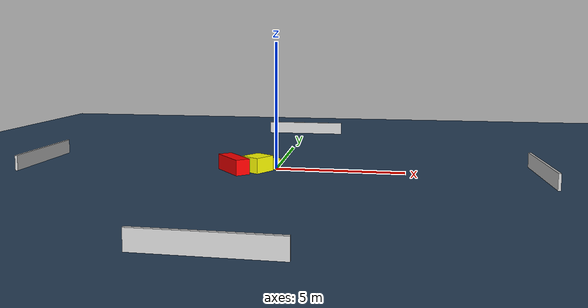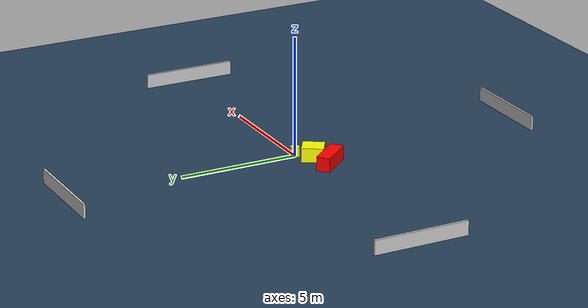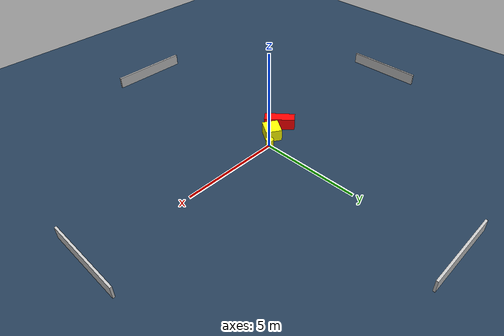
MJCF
<?xml version="1.0" ?>
<mujoco model="generated_environment">
  <option timestep="0.01" integrator="RK4" cone="elliptic"/>
  <default>
    <geom density="1"/>
  </default>
  <asset>
    <texture builtin="gradient" height="3072" name="skybox" rgb1="0.3 0.5 0.7" rgb2="0 0 0" type="skybox" width="512"/>
    <texture builtin="checker" height="300" name="groundplane" rgb1="0.2 0.3 0.4" rgb2="0.1 0.2 0.3" type="2d" width="300"/>
    <material name="groundplane" reflectance="0.2" texrepeat="5 5" texture="groundplane"/>
  </asset>
  <worldbody>
    <light dir="0 0 -1" directional="true" pos="0 0 1.5"/>
    <geom condim="3" friction="0.5 0.005 0.001" material="groundplane" name="floor" pos="0 0 0" size="0 0 0.05" type="plane"/>
    <body name="walls">
      <geom name="wall_1" condim="4" pos="-10.0 0.0 0.3" rgba="0.800000011920929 0.800000011920929 0.800000011920929 1.0" size="0.05 2.0 0.3" type="box"/>
      <geom name="wall_2" condim="4" pos="10.0 0.0 0.3" rgba="0.800000011920929 0.800000011920929 0.800000011920929 1.0" size="0.05 2.0 0.3" type="box"/>
      <geom name="wall_3" condim="4" pos="0.0 -10.0 0.3" rgba="0.800000011920929 0.800000011920929 0.800000011920929 1.0" size="2.0 0.05 0.3" type="box"/>
      <geom name="wall_4" condim="4" pos="0.0 10.0 0.3" rgba="0.800000011920929 0.800000011920929 0.800000011920929 1.0" size="2.0 0.05 0.3" type="box"/>
    </body>
    <body name="robot">
      <joint name="joint_x" type="slide" pos="0 0 0" axis="1 0 0"/>
      <joint name="joint_y" type="slide" pos="0 0 0" axis="0 1 0"/>
      <geom name="robot" type="cylinder" pos="0.0 0.0 0.2" size="0.2 0.2 0.0" mass="5.0" friction="1.0 0.005 0.0001" condim="4" rgba="1.0 1.0 0.0 1.0"/>
    </body>
    <body name="obstacle_1_movable">
      <geom name="obstacle_1_movable" condim="4" pos="-0.6573714443278771 -0.4749045000269899 0.3" euler="0 0 327.55892654318285" friction="0.0 0.005 0.001" rgba="1.0 1.0 0.0 1.0" size="0.40512941000168023 0.45370274607600547 0.3" type="box" mass="0.1"/>
      <joint type="free"/>
    </body>
    <body name="obstacle_2_static">
      <geom name="obstacle_2_static" condim="4" pos="-1.547020500989707 -0.7666061261821906 0.3" euler="0 0 40.024280020949526" friction="0.0 0.005 0.001" rgba="1.0 0.0 0.0 1.0" size="0.28059612412227797 0.7761186121928005 0.3" type="box"/>
    </body>
  </worldbody>
  <actuator>
    <motor name="actuator_x" joint="joint_x" gear="1" ctrlrange="-1 1"/>
    <motor name="actuator_y" joint="joint_y" gear="1" ctrlrange="-1 1"/>
  </actuator>
</mujoco>
